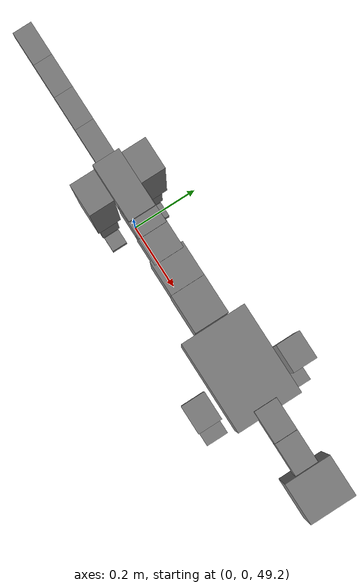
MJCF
<mujoco model="dog">

    <default>
        <joint armature="0.02" stiffness="1" damping="0.2" limited="true"/>
        <geom condim="3" friction="1 0.05 0.05" margin="0.01"/>
        <motor ctrllimited="true" ctrlrange="-1.0 1.0" forcelimited="true" gear="50"/>
    </default>

    <compiler inertiafromgeom="true" angle="radian"/>

    <option timestep="0.016" iterations="50" tolerance="1e-10" solver="Newton" jacobian="dense" cone="pyramidal"/>

    <size nconmax="20000" njmax="60000" nstack="5000000"/>
    <visual>
        <map force="0.1" zfar="30"/>
        <rgba haze="0.15 0.25 0.35 1"/>
        <quality shadowsize="2048"/>
        <global offwidth="800" offheight="800"/>
    </visual>

    <asset>
        <texture type="skybox" builtin="gradient" rgb1="0.3 0.5 0.7" rgb2="0 0 0" width="512" height="512"/>
        <texture name="texplane" type="2d" builtin="checker" rgb1=".2 .3 .4" rgb2=".1 0.15 0.2" width="512" height="512"
                 mark="cross" markrgb=".8 .8 .8"/>
        <texture name="texgeom" type="cube" builtin="flat" mark="cross" width="127" height="1278" rgb1="0.8 0.6 0.4"
                 rgb2="0.8 0.6 0.4" markrgb="1 1 1" random="0.01"/>

        <material name="matplane" reflectance="0.3" texture="texplane" texrepeat="1 1" texuniform="true"/>
        <material name="matgeom" texture="texgeom" texuniform="true" rgba="0.8 0.6 .4 1"/>
    </asset>

    <worldbody>
        <geom name="floor" pos="0 0 0" size="0 0 .25" type="plane" material="matplane" condim="3"/>

        <light directional="false" diffuse=".2 .2 .2" specular="0 0 0" pos="0 0 5" dir="0 0 -1" castshadow="false"/>
        <light mode="targetbodycom" target="torso" directional="false" diffuse=".8 .8 .8" specular="0.3 0.3 0.3"
               pos="0 0 4.0" dir="0 0 -1"/>

        <body name="root" pos="0 0 50">
            <freejoint name="root_1"/>
            <geom type="box" pos="0 0 -0.02" size="0.0774  0.0358  0.063" density="2030"/>

            <body name="spine1" pos="0.054 0 0">
                <joint name="spine1_y" axis="0 1 0" range="0 0.7" limited="true"/>
                <geom type="box" pos="0.02375 0 -0.03" size="0.04375  0.0375  0.05985" density="2030"/>

                <body name="spine2" pos="0.0612 0 0">
                    <joint name="spine2_y" axis="0 1 0" range="-0.15 0.15" limited="true"/>
                    <geom type="box" pos="0.03555  0  -0.04" size="0.04055  0.039  0.06615" density="2030"/>

                    <body name="spine3" pos="0.0730 0 0">
                        <joint name="spine3_y" axis="0 1 0" range="-0.15 0.15" limited="true"/>
                        <geom type="box" pos="0.03555  0  -0.057" size="0.04555  0.0445  0.081" density="2030"/>

                        <body name="spine4" pos="0.0780 0 0">
                            <joint name="spine4_y" axis="0 1 0" range="-0.15 0.15" limited="true"/>
                            <geom type="box" pos="0.05265  0  -0.07" size="0.05265  0.045  0.09135" density="2030"/>

                            <body name="torso" pos="0.1082 0 0">
                                <joint name="torso_y" axis="0 1 0" range="-0.15 0.15" limited="true"/>
                                <geom type="box" pos="0.11925  0  -0.085" size="0.11925  0.085  0.11745"
                                      density="2030"/>

                                <body name="neck1" pos="0.2160  0   0.0180">
                                    <joint name="neck1_y" axis="0 1 0" range="-1.2  -1" limited="true"/>
                                    <geom type="box" pos="0.0423  0  0" size="0.0423  0.03  0.036" density="2325"/>

                                    <body name="neck2" pos="0.0853  0  0">
                                        <joint name="neck2_y" axis="0 1 0" range="0.1  0" limited="true"/>
                                        <geom type="box" pos="0.0423  0  0" size="0.0423  0.03  0.036" density="2325"/>

                                        <body name="head" pos="0.0853  0  0">
                                            <joint name="head_y" axis="0 1 0" range="-0.3  -0.2" limited="true"/>
                                            <geom type="box" pos="0.0531  0  -0.055" size="0.0531  0.06  0.1044"
                                                  density="4030"/>

                                        </body>
                                    </body>
                                </body>

                                <body name="front_shoulder" pos="0.156  0   -0.0480">
                                    <joint name="front_shoulder_y" axis="0 1 0" range="-1 1.5" limited="true"/>
                                    <geom type="box" pos="0 0.13 -0.0642" size="0.0375  0.0320  0.0908" density="1158"/>
                                    <geom type="box" pos="0 -0.13 -0.0642" size="0.0375  0.0320  0.0908"
                                          density="1158"/>

                                    <body name="front_elbow" pos="0  0  -0.1284">
                                        <joint name="front_elbow_y" axis="0 1 0" range="-2 0" limited="true"/>
                                        <geom type="box" pos="0 0.13 -0.0938" size="0.0223  0.0228  0.0938"
                                              density="1081"/>
                                        <geom type="box" pos="0 -0.13 -0.0938" size="0.0223  0.0228  0.0938"
                                              density="1081"/>

                                        <body name="front_wrist" pos="0  0  -0.1877">
                                            <joint name="front_wrist_y" axis="0 1 0" range="-0.2 0" limited="true"/>
                                            <geom type="box" pos="0 0.13 -0.0807" size="0.0136  0.0152  0.0938"
                                                  density="1664"/>
                                            <geom type="box" pos="0 -0.13 -0.0807" size="0.0136  0.0152  0.0938"
                                                  density="1664"/>

                                            <body name="front_finger_end" pos="0  0  -0.1614">
                                                <joint name="front_finger_y" axis="0 1 0" range="-0.4 1"
                                                       limited="true"/>
                                                <geom type="box" pos="0.0321  0.13  -0.0204"
                                                      size="0.0589  0.0321  0.0354" density="1515"/>
                                                <geom type="box" pos="0.0321  -0.13  -0.0204"
                                                      size="0.0589  0.0321  0.0354" density="1515"/>

                                            </body>

                                        </body>
                                    </body>
                                </body>

                            </body>
                        </body>
                    </body>
                </body>
            </body>

            <body name="back_hip" pos="-0.03 0 -0.018">
                <joint name="back_hip_y" axis="0 1 0" range="-1.5 0.3" limited="true"/>
                <geom type="box" pos="0 0.07 -0.1602" size="0.0428  0.0336  0.1830" density="1154"/>
                <geom type="box" pos="0 -0.07 -0.1602" size="0.0428  0.0336  0.1830" density="1154"/>

                <body name="back_knee" pos="0  0  -0.3205">
                    <joint name="back_knee_y" axis="0 1 0" range="0 2.8" limited="true"/>
                    <geom type="box" pos="0 0.07 -0.1357" size="0.0269  0.0265  0.1512" density="1227"/>
                    <geom type="box" pos="0 -0.07 -0.1357" size="0.0269  0.0265  0.1512" density="1227"/>

                    <body name="back_ankle" pos="0  0  -0.2713">
                        <joint name="back_ankle_y" axis="0 1 0" range="-2.2 0" limited="true"/>
                        <geom type="box" pos="0 0.07 -0.0458" size="0.0213  0.0213  0.0570" density="1284"/>
                        <geom type="box" pos="0 -0.07 -0.0458" size="0.0213  0.0213  0.0570" density="1284"/>

                        <body name="back_toe_end" pos="0  0  -0.0915">
                            <joint name="back_toe_y" axis="0 1 0" range="-0.4 1" limited="true"/>
                            <geom type="box" pos="0.0229  0.07  -0.0024" size="0.0420  0.0229  0.0174" density="1515"/>
                            <geom type="box" pos="0.0229  -0.07  -0.0024" size="0.0420  0.0229  0.0174" density="1515"/>

                        </body>
                    </body>
                </body>
            </body>

            <body name="tail1" pos="-0.074 0 -0.006">
                <joint name="tail1_y" axis="0 1 0" range="-0.2 0.2" limited="true"/>
                <geom type="box" pos="-0.0536  0  0" size="0.045  0.025  0.0175" density="1587"/>

                <body name="tail2" pos="-0.09 0 0">
                    <joint name="tail2_y" axis="0 1 0" range="-0.2 0.2" limited="true"/>
                    <geom type="box" pos="-0.0536  0  0" size="0.045  0.025  0.0175" density="1587"/>

                    <body name="tail3" pos="-0.09 0 0">
                        <joint name="tail3_y" axis="0 1 0" range="-0.2 0.2" limited="true"/>
                        <geom type="box" pos="-0.0536  0  0" size="0.045  0.025  0.0175" density="1587"/>

                        <body name="tail4" pos="-0.09 0 0">
                            <joint name="tail4_y" axis="0 1 0" range="-0.2 0.2" limited="true"/>
                            <geom type="box" pos="-0.0536  0  0" size="0.045  0.025  0.0175" density="1587"/>

                        </body>
                    </body>
                </body>
            </body>
        </body>
    </worldbody>

    <actuator>
        <motor joint="spine1_y" forcerange="-150 150     "/>
        <motor joint="spine2_y" forcerange="-150 150     "/>
        <motor joint="spine3_y" forcerange="-150 150     "/>
        <motor joint="spine4_y" forcerange="-150 150     "/>
        <motor joint="torso_y" forcerange="-150 150     "/>
        <motor joint="neck1_y" forcerange="-100 100       "/>
        <motor joint="neck2_y" forcerange="-100 100       "/>
        <motor joint="head_y" forcerange="-150 150       "/>
        <motor joint="front_shoulder_y" forcerange="-164.93 148.53"/>
        <motor joint="front_elbow_y" forcerange="-106.95 159.10"/>
        <motor joint="front_wrist_y" forcerange="-50.00 71.22"/>
        <motor joint="front_finger_y" forcerange="-66.40 64.85"/>
        <motor joint="back_hip_y" forcerange="-311.08 336.36"/>
        <motor joint="back_knee_y" forcerange="-382.96 202.46"/>
        <motor joint="back_angle_y" forcerange="-82.75 158.65"/>
        <motor joint="back_toe_y" forcerange="-82.50 20.74"/>
        <motor joint="tail1_y" forcerange="-50 50     "/>
        <motor joint="tail2_y" forcerange="-50 50     "/>
        <motor joint="tail3_y" forcerange="-50 50     "/>
        <motor joint="tail4_y" forcerange="-50 50     "/>
    </actuator>
</mujoco>
